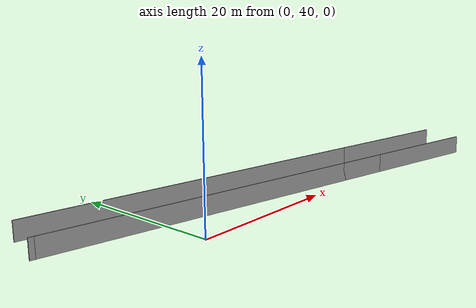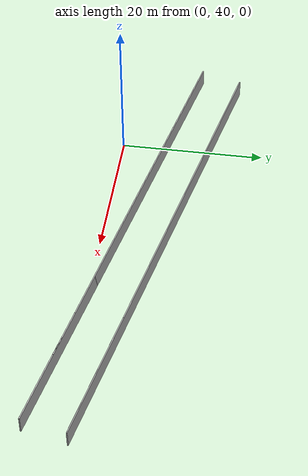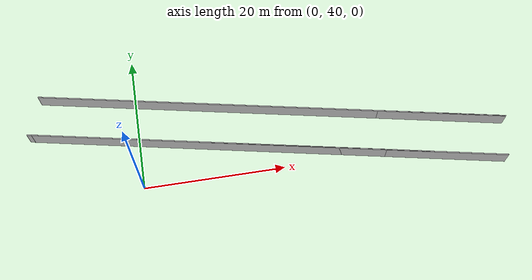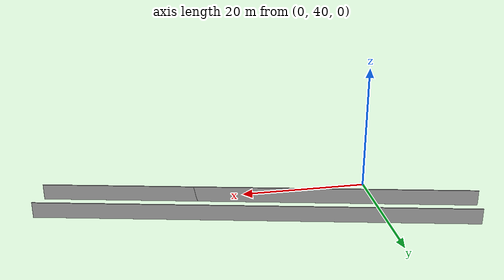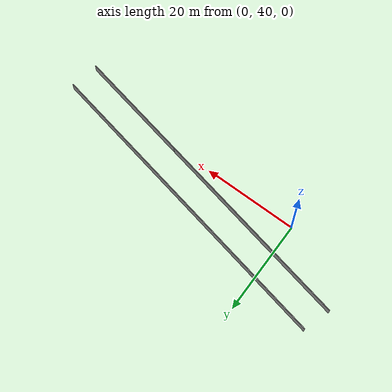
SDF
<?xml version="1.0" ?>
<sdf version="1.6">
  <model name="sps_1504">
    <pose frame="">0 0 0 0 -0 0</pose>
    <static>1</static>
    <self_collide>0</self_collide>
    <allow_auto_disable>0</allow_auto_disable>
    <link name="Wall24">
      <kinematic>0</kinematic>
      <gravity>1</gravity>
      <self_collide>0</self_collide>
      <collision name="collision">
        <geometry>
          <box>
            <size>17.1475 0.15 2.5</size>
          </box>
        </geometry>
        <pose frame="">0 0 0 0 -0 0</pose>
      </collision>
      <visual name="visual">
        <geometry>
          <box>
            <size>17.1475 0.15 2.5</size>
          </box>
        </geometry>
        <pose frame="">0 0 0 0 -0 0</pose>
        <cast_shadows>1</cast_shadows>
        <transparency>0.0</transparency>
      </visual>
      <pose frame="">42.8679 37.7551 1.25 0 -0 2.93901</pose>
    </link>
    <link name="Wall25">
      <kinematic>0</kinematic>
      <gravity>1</gravity>
      <self_collide>0</self_collide>
      <collision name="collision">
        <geometry>
          <box>
            <size>51.0438 0.15 2.5</size>
          </box>
        </geometry>
        <pose frame="">0 0 0 0 -0 0</pose>
      </collision>
      <visual name="visual">
        <geometry>
          <box>
            <size>51.0438 0.15 2.5</size>
          </box>
        </geometry>
        <pose frame="">0 0 0 0 -0 0</pose>
        <cast_shadows>1</cast_shadows>
        <transparency>0.0</transparency>
      </visual>
      <pose frame="">9.46944 44.6151 1.25 0 -0 2.93901</pose>
    </link>
    <link name="Wall609">
      <kinematic>0</kinematic>
      <gravity>1</gravity>
      <self_collide>0</self_collide>
      <collision name="collision">
        <geometry>
          <box>
            <size>18.3831 0.15 2.5</size>
          </box>
        </geometry>
        <pose frame="">0 0 0 0 -0 0</pose>
      </collision>
      <visual name="visual">
        <geometry>
          <box>
            <size>18.3831 0.15 2.5</size>
          </box>
        </geometry>
        <pose frame="">0 0 0 0 -0 0</pose>
        <cast_shadows>1</cast_shadows>
        <transparency>0.0</transparency>
      </visual>
      <pose frame="">43.4734 43.7539 1.25 0 -0 2.93924</pose>
    </link>
    <link name="Wall992">
      <kinematic>0</kinematic>
      <gravity>1</gravity>
      <self_collide>0</self_collide>
      <collision name="collision">
        <geometry>
          <box>
            <size>67.5356 0.15 2.5</size>
          </box>
        </geometry>
        <pose frame="">0 0 0 0 -0 0</pose>
      </collision>
      <visual name="visual">
        <geometry>
          <box>
            <size>67.5356 0.15 2.5</size>
          </box>
        </geometry>
        <pose frame="">0 0 0 0 -0 0</pose>
        <cast_shadows>1</cast_shadows>
        <transparency>0.0</transparency>
      </visual>
      <pose frame="">18.189 42.824 1.25 0 -0 2.93902</pose>
    </link>
    <link name="Wall994">
      <kinematic>0</kinematic>
      <gravity>1</gravity>
      <self_collide>0</self_collide>
      <collision name="collision">
        <geometry>
          <box>
            <size>67.5363 0.15 2.5</size>
          </box>
        </geometry>
        <pose frame="">0 0 0 0 -0 0</pose>
      </collision>
      <visual name="visual">
        <geometry>
          <box>
            <size>67.5363 0.15 2.5</size>
          </box>
        </geometry>
        <pose frame="">0 0 0 0 -0 0</pose>
        <cast_shadows>1</cast_shadows>
        <transparency>0.0</transparency>
      </visual>
      <pose frame="">19.3982 48.6932 1.25 0 0 -0.202351</pose>
    </link>
  </model>
</sdf>
